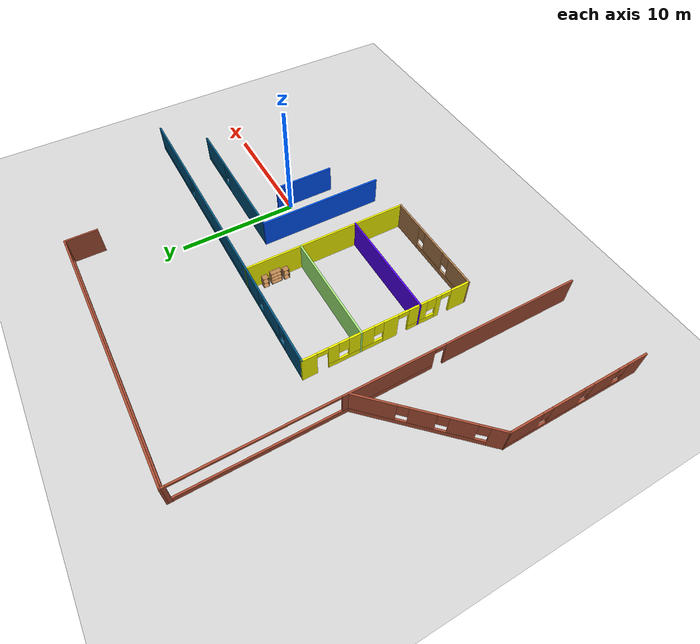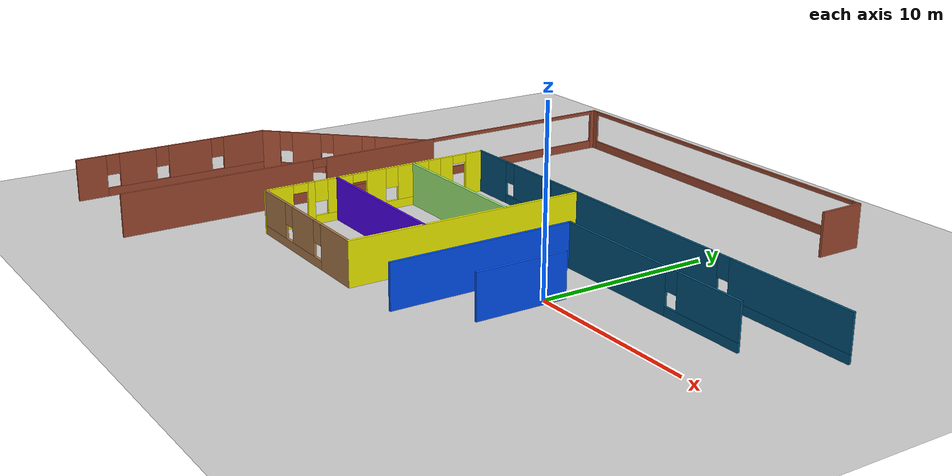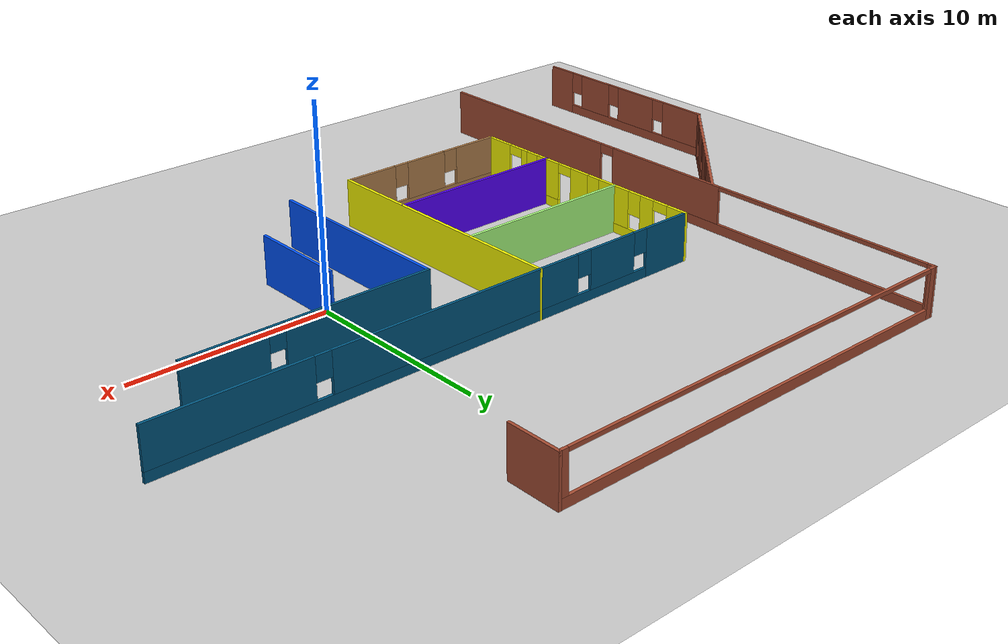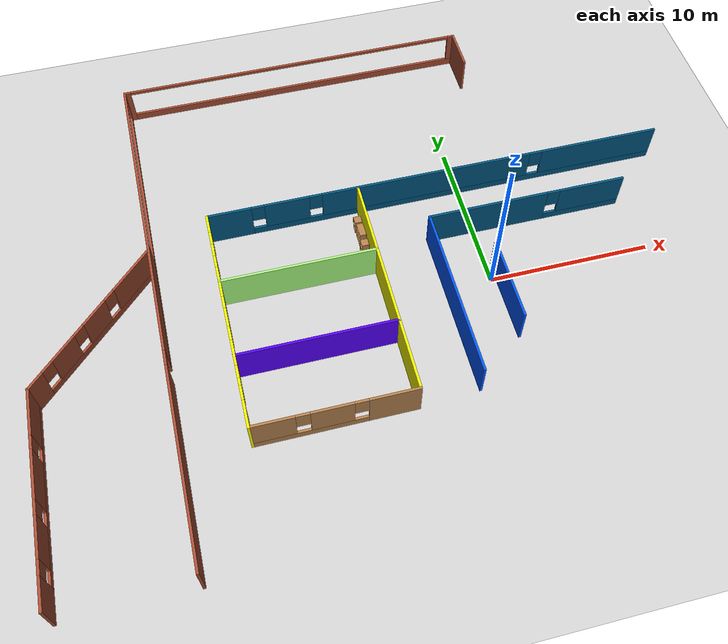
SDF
<sdf version="1.6">
 <world name="default">
  <model name="ground_plane">
   <static>1</static>
   <link name="link">
    <collision name="collision">
     <geometry><plane><normal>0 0 1</normal><size>100 100</size></plane></geometry>
     <surface><friction><ode><mu>100</mu><mu2>50</mu2></ode></friction></surface>
    </collision>
    <visual name="visual">
     <cast_shadows>0</cast_shadows>
     <geometry><plane><normal>0 0 1</normal><size>100 100</size></plane></geometry>
     <material>
      <script><uri>file://media/materials/scripts/gazebo.material</uri><name>Gazebo/Grey</name></script>
     </material>
    </visual>
   </link>
  </model>
  <model name="spiral_office">
   <link name="Wall_10">
    <pose>-8.28463 18.4006 0 0 -0 0</pose>
    <visual name="Wall_10_Visual_0">
     <pose>-11.142 0 1.25 0 -0 0</pose>
     <geometry><box><size>0.465955 0.15 2.5</size></box></geometry>
     <material>
      <script><uri>file://media/materials/scripts/gazebo.material</uri><name>Gazebo/Bricks</name></script>
      <ambient>1 1 1 1</ambient>
     </material>
     <meta><layer>0</layer></meta>
    </visual>
    <collision name="Wall_10_Collision_0">
     <geometry><box><size>0.465955 0.15 2.5</size></box></geometry>
     <pose>-11.142 0 1.25 0 -0 0</pose>
    </collision>
    <visual name="Wall_10_Visual_1">
     <pose>0.232978 0 0.25 0 -0 0</pose>
     <geometry><box><size>22.284 0.15 0.5</size></box></geometry>
     <material>
      <script><uri>file://media/materials/scripts/gazebo.material</uri><name>Gazebo/Bricks</name></script>
      <ambient>1 1 1 1</ambient>
     </material>
     <meta><layer>0</layer></meta>
    </visual>
    <collision name="Wall_10_Collision_1">
     <geometry><box><size>22.284 0.15 0.5</size></box></geometry>
     <pose>0.232978 0 0.25 0 -0 0</pose>
    </collision>
    <visual name="Wall_10_Visual_2">
     <pose>11.1279 0 1.5 0 -0 0</pose>
     <geometry><box><size>0.494199 0.15 2</size></box></geometry>
     <material>
      <script><uri>file://media/materials/scripts/gazebo.material</uri><name>Gazebo/Bricks</name></script>
      <ambient>1 1 1 1</ambient>
     </material>
     <meta><layer>0</layer></meta>
    </visual>
    <collision name="Wall_10_Collision_2">
     <geometry><box><size>0.494199 0.15 2</size></box></geometry>
     <pose>11.1279 0 1.5 0 -0 0</pose>
    </collision>
    <visual name="Wall_10_Visual_3">
     <pose>-0.014122 0 2.4 0 -0 0</pose>
     <geometry><box><size>21.7898 0.15 0.2</size></box></geometry>
     <material>
      <script><uri>file://media/materials/scripts/gazebo.material</uri><name>Gazebo/Bricks</name></script>
      <ambient>1 1 1 1</ambient>
     </material>
     <meta><layer>0</layer></meta>
    </visual>
    <collision name="Wall_10_Collision_3">
     <geometry><box><size>21.7898 0.15 0.2</size></box></geometry>
     <pose>-0.014122 0 2.4 0 -0 0</pose>
    </collision>
   </link>
   <link name="Wall_11">
    <collision name="Wall_11_Collision">
     <geometry><box><size>2.75 0.15 2.5</size></box></geometry>
     <pose>0 0 1.25 0 -0 0</pose>
    </collision>
    <visual name="Wall_11_Visual">
     <pose>0 0 1.25 0 -0 0</pose>
     <geometry><box><size>2.75 0.15 2.5</size></box></geometry>
     <material>
      <script><uri>file://media/materials/scripts/gazebo.material</uri><name>Gazebo/Bricks</name></script>
      <ambient>1 1 1 1</ambient>
     </material>
     <meta><layer>0</layer></meta>
    </visual>
    <pose>3.01537 17.1006 0 0 0 -1.5708</pose>
   </link>
   <link name="Wall_36">
    <collision name="Wall_36_Collision">
     <geometry><box><size>14.25 0.15 2.5</size></box></geometry>
     <pose>0 0 1.25 0 -0 0</pose>
    </collision>
    <visual name="Wall_36_Visual">
     <pose>0 0 1.25 0 -0 0</pose>
     <geometry><box><size>14.25 0.15 2.5</size></box></geometry>
     <material>
      <script><uri>file://media/materials/scripts/gazebo.material</uri><name>Gazebo/Grey</name></script>
      <ambient>1 1 0 1</ambient>
     </material>
     <meta><layer>0</layer></meta>
    </visual>
    <pose>-6.55416 -0.061107 0 0 0 -1.5708</pose>
   </link>
   <link name="Wall_37">
    <pose>-11.2292 -7.11111 0 0 -0 3.14159</pose>
    <visual name="Wall_37_Visual_0">
     <pose>-3.28826 0 1.25 0 -0 0</pose>
     <geometry><box><size>2.92347 0.15 2.5</size></box></geometry>
     <material>
      <script><uri>file://media/materials/scripts/gazebo.material</uri><name>Gazebo/Wood</name></script>
      <ambient>1 1 1 1</ambient>
     </material>
     <meta><layer>0</layer></meta>
    </visual>
    <collision name="Wall_37_Collision_0">
     <geometry><box><size>2.92347 0.15 2.5</size></box></geometry>
     <pose>-3.28826 0 1.25 0 -0 0</pose>
    </collision>
    <visual name="Wall_37_Visual_1">
     <pose>1.46174 0 0.25 0 -0 0</pose>
     <geometry><box><size>6.57653 0.15 0.5</size></box></geometry>
     <material>
      <script><uri>file://media/materials/scripts/gazebo.material</uri><name>Gazebo/Wood</name></script>
      <ambient>1 1 1 1</ambient>
     </material>
     <meta><layer>0</layer></meta>
    </visual>
    <collision name="Wall_37_Collision_1">
     <geometry><box><size>6.57653 0.15 0.5</size></box></geometry>
     <pose>1.46174 0 0.25 0 -0 0</pose>
    </collision>
    <visual name="Wall_37_Visual_2">
     <pose>0.178551 0 1.5 0 -0 0</pose>
     <geometry><box><size>2.41015 0.15 2</size></box></geometry>
     <material>
      <script><uri>file://media/materials/scripts/gazebo.material</uri><name>Gazebo/Wood</name></script>
      <ambient>1 1 1 1</ambient>
     </material>
     <meta><layer>0</layer></meta>
    </visual>
    <collision name="Wall_37_Collision_2">
     <geometry><box><size>2.41015 0.15 2</size></box></geometry>
     <pose>0.178551 0 1.5 0 -0 0</pose>
    </collision>
    <visual name="Wall_37_Visual_3">
     <pose>3.46681 0 1.5 0 -0 0</pose>
     <geometry><box><size>2.56637 0.15 2</size></box></geometry>
     <material>
      <script><uri>file://media/materials/scripts/gazebo.material</uri><name>Gazebo/Wood</name></script>
      <ambient>1 1 1 1</ambient>
     </material>
     <meta><layer>0</layer></meta>
    </visual>
    <collision name="Wall_37_Collision_3">
     <geometry><box><size>2.56637 0.15 2</size></box></geometry>
     <pose>3.46681 0 1.5 0 -0 0</pose>
    </collision>
    <visual name="Wall_37_Visual_4">
     <pose>-1.42653 0 1.9 0 -0 0</pose>
     <geometry><box><size>0.8 0.15 1.2</size></box></geometry>
     <material>
      <script><uri>file://media/materials/scripts/gazebo.material</uri><name>Gazebo/Wood</name></script>
      <ambient>1 1 1 1</ambient>
     </material>
     <meta><layer>0</layer></meta>
    </visual>
    <collision name="Wall_37_Collision_4">
     <geometry><box><size>0.8 0.15 1.2</size></box></geometry>
     <pose>-1.42653 0 1.9 0 -0 0</pose>
    </collision>
    <visual name="Wall_37_Visual_5">
     <pose>1.78363 0 1.9 0 -0 0</pose>
     <geometry><box><size>0.8 0.15 1.2</size></box></geometry>
     <material>
      <script><uri>file://media/materials/scripts/gazebo.material</uri><name>Gazebo/Wood</name></script>
      <ambient>1 1 1 1</ambient>
     </material>
     <meta><layer>0</layer></meta>
    </visual>
    <collision name="Wall_37_Collision_5">
     <geometry><box><size>0.8 0.15 1.2</size></box></geometry>
     <pose>1.78363 0 1.9 0 -0 0</pose>
    </collision>
   </link>
   <link name="Wall_38">
    <pose>-15.9042 -0.061107 0 0 -0 1.5708</pose>
    <visual name="Wall_38_Visual_0">
     <pose>-6.27959 0 1.25 0 -0 0</pose>
     <geometry><box><size>1.69081 0.15 2.5</size></box></geometry>
     <material>
      <script><uri>file://media/materials/scripts/gazebo.material</uri><name>Gazebo/Grey</name></script>
      <ambient>1 1 0 1</ambient>
     </material>
     <meta><layer>0</layer></meta>
    </visual>
    <collision name="Wall_38_Collision_0">
     <geometry><box><size>1.69081 0.15 2.5</size></box></geometry>
     <pose>-6.27959 0 1.25 0 -0 0</pose>
    </collision>
    <visual name="Wall_38_Visual_1">
     <pose>-4.31572 0 1.25 0 -0 0</pose>
     <geometry><box><size>0.436935 0.15 2.5</size></box></geometry>
     <material>
      <script><uri>file://media/materials/scripts/gazebo.material</uri><name>Gazebo/Grey</name></script>
      <ambient>1 1 0 1</ambient>
     </material>
     <meta><layer>0</layer></meta>
    </visual>
    <collision name="Wall_38_Collision_1">
     <geometry><box><size>0.436935 0.15 2.5</size></box></geometry>
     <pose>-4.31572 0 1.25 0 -0 0</pose>
    </collision>
    <visual name="Wall_38_Visual_2">
     <pose>-0.169275 0 1.25 0 -0 0</pose>
     <geometry><box><size>1.23947 0.15 2.5</size></box></geometry>
     <material>
      <script><uri>file://media/materials/scripts/gazebo.material</uri><name>Gazebo/Grey</name></script>
      <ambient>1 1 0 1</ambient>
     </material>
     <meta><layer>0</layer></meta>
    </visual>
    <collision name="Wall_38_Collision_2">
     <geometry><box><size>1.23947 0.15 2.5</size></box></geometry>
     <pose>-0.169275 0 1.25 0 -0 0</pose>
    </collision>
    <visual name="Wall_38_Visual_3">
     <pose>6.5119 0 1.25 0 -0 0</pose>
     <geometry><box><size>1.2262 0.15 2.5</size></box></geometry>
     <material>
      <script><uri>file://media/materials/scripts/gazebo.material</uri><name>Gazebo/Grey</name></script>
      <ambient>1 1 0 1</ambient>
     </material>
     <meta><layer>0</layer></meta>
    </visual>
    <collision name="Wall_38_Collision_3">
     <geometry><box><size>1.2262 0.15 2.5</size></box></geometry>
     <pose>6.5119 0 1.25 0 -0 0</pose>
    </collision>
    <visual name="Wall_38_Visual_4">
     <pose>-2.89313 0 0.25 0 -0 0</pose>
     <geometry><box><size>2.40824 0.15 0.5</size></box></geometry>
     <material>
      <script><uri>file://media/materials/scripts/gazebo.material</uri><name>Gazebo/Grey</name></script>
      <ambient>1 1 0 1</ambient>
     </material>
     <meta><layer>0</layer></meta>
    </visual>
    <collision name="Wall_38_Collision_4">
     <geometry><box><size>2.40824 0.15 0.5</size></box></geometry>
     <pose>-2.89313 0 0.25 0 -0 0</pose>
    </collision>
    <visual name="Wall_38_Visual_5">
     <pose>2.72463 0 0.25 0 -0 0</pose>
     <geometry><box><size>4.54834 0.15 0.5</size></box></geometry>
     <material>
      <script><uri>file://media/materials/scripts/gazebo.material</uri><name>Gazebo/Grey</name></script>
      <ambient>1 1 0 1</ambient>
     </material>
     <meta><layer>0</layer></meta>
    </visual>
    <collision name="Wall_38_Collision_5">
     <geometry><box><size>4.54834 0.15 0.5</size></box></geometry>
     <pose>2.72463 0 0.25 0 -0 0</pose>
    </collision>
    <visual name="Wall_38_Visual_6">
     <pose>-2.49313 0 1.5 0 -0 0</pose>
     <geometry><box><size>1.60824 0.15 2</size></box></geometry>
     <material>
      <script><uri>file://media/materials/scripts/gazebo.material</uri><name>Gazebo/Grey</name></script>
      <ambient>1 1 0 1</ambient>
     </material>
     <meta><layer>0</layer></meta>
    </visual>
    <collision name="Wall_38_Collision_6">
     <geometry><box><size>1.60824 0.15 2</size></box></geometry>
     <pose>-2.49313 0 1.5 0 -0 0</pose>
    </collision>
    <visual name="Wall_38_Visual_7">
     <pose>-2.49313 0 1.5 0 -0 0</pose>
     <geometry><box><size>1.60824 0.15 2</size></box></geometry>
     <material>
      <script><uri>file://media/materials/scripts/gazebo.material</uri><name>Gazebo/Grey</name></script>
      <ambient>1 1 0 1</ambient>
     </material>
     <meta><layer>0</layer></meta>
    </visual>
    <collision name="Wall_38_Collision_7">
     <geometry><box><size>1.60824 0.15 2</size></box></geometry>
     <pose>-2.49313 0 1.5 0 -0 0</pose>
    </collision>
    <visual name="Wall_38_Visual_8">
     <pose>2.29503 0 1.5 0 -0 0</pose>
     <geometry><box><size>2.08914 0.15 2</size></box></geometry>
     <material>
      <script><uri>file://media/materials/scripts/gazebo.material</uri><name>Gazebo/Grey</name></script>
      <ambient>1 1 0 1</ambient>
     </material>
     <meta><layer>0</layer></meta>
    </visual>
    <collision name="Wall_38_Collision_8">
     <geometry><box><size>2.08914 0.15 2</size></box></geometry>
     <pose>2.29503 0 1.5 0 -0 0</pose>
    </collision>
    <visual name="Wall_38_Visual_9">
     <pose>4.5692 0 1.5 0 -0 0</pose>
     <geometry><box><size>0.859205 0.15 2</size></box></geometry>
     <material>
      <script><uri>file://media/materials/scripts/gazebo.material</uri><name>Gazebo/Grey</name></script>
      <ambient>1 1 0 1</ambient>
     </material>
     <meta><layer>0</layer></meta>
    </visual>
    <collision name="Wall_38_Collision_9">
     <geometry><box><size>0.859205 0.15 2</size></box></geometry>
     <pose>4.5692 0 1.5 0 -0 0</pose>
    </collision>
    <visual name="Wall_38_Visual_10">
     <pose>-3.69725 0 1.9 0 -0 0</pose>
     <geometry><box><size>0.8 0.15 1.2</size></box></geometry>
     <material>
      <script><uri>file://media/materials/scripts/gazebo.material</uri><name>Gazebo/Grey</name></script>
      <ambient>1 1 0 1</ambient>
     </material>
     <meta><layer>0</layer></meta>
    </visual>
    <collision name="Wall_38_Collision_10">
     <geometry><box><size>0.8 0.15 1.2</size></box></geometry>
     <pose>-3.69725 0 1.9 0 -0 0</pose>
    </collision>
    <visual name="Wall_38_Visual_11">
     <pose>0.850461 0 1.9 0 -0 0</pose>
     <geometry><box><size>0.8 0.15 1.2</size></box></geometry>
     <material>
      <script><uri>file://media/materials/scripts/gazebo.material</uri><name>Gazebo/Grey</name></script>
      <ambient>1 1 0 1</ambient>
     </material>
     <meta><layer>0</layer></meta>
    </visual>
    <collision name="Wall_38_Collision_11">
     <geometry><box><size>0.8 0.15 1.2</size></box></geometry>
     <pose>0.850461 0 1.9 0 -0 0</pose>
    </collision>
    <visual name="Wall_38_Visual_12">
     <pose>3.7396 0 1.9 0 -0 0</pose>
     <geometry><box><size>0.8 0.15 1.2</size></box></geometry>
     <material>
      <script><uri>file://media/materials/scripts/gazebo.material</uri><name>Gazebo/Grey</name></script>
      <ambient>1 1 0 1</ambient>
     </material>
     <meta><layer>0</layer></meta>
    </visual>
    <collision name="Wall_38_Collision_12">
     <geometry><box><size>0.8 0.15 1.2</size></box></geometry>
     <pose>3.7396 0 1.9 0 -0 0</pose>
    </collision>
    <visual name="Wall_38_Visual_13">
     <pose>-4.98419 0 2.25 0 -0 0</pose>
     <geometry><box><size>0.9 0.15 0.5</size></box></geometry>
     <material>
      <script><uri>file://media/materials/scripts/gazebo.material</uri><name>Gazebo/Grey</name></script>
      <ambient>1 1 0 1</ambient>
     </material>
     <meta><layer>0</layer></meta>
    </visual>
    <collision name="Wall_38_Collision_13">
     <geometry><box><size>0.9 0.15 0.5</size></box></geometry>
     <pose>-4.98419 0 2.25 0 -0 0</pose>
    </collision>
    <visual name="Wall_38_Visual_14">
     <pose>-1.23901 0 2.25 0 -0 0</pose>
     <geometry><box><size>0.9 0.15 0.5</size></box></geometry>
     <material>
      <script><uri>file://media/materials/scripts/gazebo.material</uri><name>Gazebo/Grey</name></script>
      <ambient>1 1 0 1</ambient>
     </material>
     <meta><layer>0</layer></meta>
    </visual>
    <collision name="Wall_38_Collision_14">
     <geometry><box><size>0.9 0.15 0.5</size></box></geometry>
     <pose>-1.23901 0 2.25 0 -0 0</pose>
    </collision>
    <visual name="Wall_38_Visual_15">
     <pose>-1.23901 0 2.25 0 -0 0</pose>
     <geometry><box><size>0.9 0.15 0.5</size></box></geometry>
     <material>
      <script><uri>file://media/materials/scripts/gazebo.material</uri><name>Gazebo/Grey</name></script>
      <ambient>1 1 0 1</ambient>
     </material>
     <meta><layer>0</layer></meta>
    </visual>
    <collision name="Wall_38_Collision_15">
     <geometry><box><size>0.9 0.15 0.5</size></box></geometry>
     <pose>-1.23901 0 2.25 0 -0 0</pose>
    </collision>
    <visual name="Wall_38_Visual_16">
     <pose>5.4488 0 2.25 0 -0 0</pose>
     <geometry><box><size>0.9 0.15 0.5</size></box></geometry>
     <material>
      <script><uri>file://media/materials/scripts/gazebo.material</uri><name>Gazebo/Grey</name></script>
      <ambient>1 1 0 1</ambient>
     </material>
     <meta><layer>0</layer></meta>
    </visual>
    <collision name="Wall_38_Collision_16">
     <geometry><box><size>0.9 0.15 0.5</size></box></geometry>
     <pose>5.4488 0 2.25 0 -0 0</pose>
    </collision>
   </link>
   <link name="Wall_39">
    <pose>-1.47916 6.98889 0 0 -0 0</pose>
    <visual name="Wall_39_Visual_0">
     <pose>-13.1098 0 1.25 0 -0 0</pose>
     <geometry><box><size>2.78039 0.15 2.5</size></box></geometry>
     <material>
      <script><uri>file://media/materials/scripts/gazebo.material</uri><name>Gazebo/Grey</name></script>
      <ambient>0 0.333333 0.498039 1</ambient>
     </material>
     <meta><layer>0</layer></meta>
    </visual>
    <collision name="Wall_39_Collision_0">
     <geometry><box><size>2.78039 0.15 2.5</size></box></geometry>
     <pose>-13.1098 0 1.25 0 -0 0</pose>
    </collision>
    <visual name="Wall_39_Visual_1">
     <pose>1.39019 0 0.25 0 -0 0</pose>
     <geometry><box><size>26.2196 0.15 0.5</size></box></geometry>
     <material>
      <script><uri>file://media/materials/scripts/gazebo.material</uri><name>Gazebo/Grey</name></script>
      <ambient>0 0.333333 0.498039 1</ambient>
     </material>
     <meta><layer>0</layer></meta>
    </visual>
    <collision name="Wall_39_Collision_1">
     <geometry><box><size>26.2196 0.15 0.5</size></box></geometry>
     <pose>1.39019 0 0.25 0 -0 0</pose>
    </collision>
    <visual name="Wall_39_Visual_2">
     <pose>-9.52728 0 1.5 0 -0 0</pose>
     <geometry><box><size>2.78467 0.15 2</size></box></geometry>
     <material>
      <script><uri>file://media/materials/scripts/gazebo.material</uri><name>Gazebo/Grey</name></script>
      <ambient>0 0.333333 0.498039 1</ambient>
     </material>
     <meta><layer>0</layer></meta>
    </visual>
    <collision name="Wall_39_Collision_2">
     <geometry><box><size>2.78467 0.15 2</size></box></geometry>
     <pose>-9.52728 0 1.5 0 -0 0</pose>
    </collision>
    <visual name="Wall_39_Visual_3">
     <pose>-0.641047 0 1.5 0 -0 0</pose>
     <geometry><box><size>13.3878 0.15 2</size></box></geometry>
     <material>
      <script><uri>file://media/materials/scripts/gazebo.material</uri><name>Gazebo/Grey</name></script>
      <ambient>0 0.333333 0.498039 1</ambient>
     </material>
     <meta><layer>0</layer></meta>
    </visual>
    <collision name="Wall_39_Collision_3">
     <geometry><box><size>13.3878 0.15 2</size></box></geometry>
     <pose>-0.641047 0 1.5 0 -0 0</pose>
    </collision>
    <visual name="Wall_39_Visual_4">
     <pose>10.6764 0 1.5 0 -0 0</pose>
     <geometry><box><size>7.64715 0.15 2</size></box></geometry>
     <material>
      <script><uri>file://media/materials/scripts/gazebo.material</uri><name>Gazebo/Grey</name></script>
      <ambient>0 0.333333 0.498039 1</ambient>
     </material>
     <meta><layer>0</layer></meta>
    </visual>
    <collision name="Wall_39_Collision_4">
     <geometry><box><size>7.64715 0.15 2</size></box></geometry>
     <pose>10.6764 0 1.5 0 -0 0</pose>
    </collision>
    <visual name="Wall_39_Visual_5">
     <pose>-11.3196 0 1.9 0 -0 0</pose>
     <geometry><box><size>0.8 0.15 1.2</size></box></geometry>
     <material>
      <script><uri>file://media/materials/scripts/gazebo.material</uri><name>Gazebo/Grey</name></script>
      <ambient>0 0.333333 0.498039 1</ambient>
     </material>
     <meta><layer>0</layer></meta>
    </visual>
    <collision name="Wall_39_Collision_5">
     <geometry><box><size>0.8 0.15 1.2</size></box></geometry>
     <pose>-11.3196 0 1.9 0 -0 0</pose>
    </collision>
    <visual name="Wall_39_Visual_6">
     <pose>-7.73495 0 1.9 0 -0 0</pose>
     <geometry><box><size>0.8 0.15 1.2</size></box></geometry>
     <material>
      <script><uri>file://media/materials/scripts/gazebo.material</uri><name>Gazebo/Grey</name></script>
      <ambient>0 0.333333 0.498039 1</ambient>
     </material>
     <meta><layer>0</layer></meta>
    </visual>
    <collision name="Wall_39_Collision_6">
     <geometry><box><size>0.8 0.15 1.2</size></box></geometry>
     <pose>-7.73495 0 1.9 0 -0 0</pose>
    </collision>
    <visual name="Wall_39_Visual_7">
     <pose>6.45285 0 1.9 0 -0 0</pose>
     <geometry><box><size>0.8 0.15 1.2</size></box></geometry>
     <material>
      <script><uri>file://media/materials/scripts/gazebo.material</uri><name>Gazebo/Grey</name></script>
      <ambient>0 0.333333 0.498039 1</ambient>
     </material>
     <meta><layer>0</layer></meta>
    </visual>
    <collision name="Wall_39_Collision_7">
     <geometry><box><size>0.8 0.15 1.2</size></box></geometry>
     <pose>6.45285 0 1.9 0 -0 0</pose>
    </collision>
   </link>
   <link name="Wall_42">
    <collision name="Wall_42_Collision">
     <geometry><box><size>10.75 0.15 2.5</size></box></geometry>
     <pose>0 0 1.25 0 -0 0</pose>
    </collision>
    <visual name="Wall_42_Visual">
     <pose>0 0 1.25 0 -0 0</pose>
     <geometry><box><size>10.75 0.15 2.5</size></box></geometry>
     <material>
      <script><uri>file://media/materials/scripts/gazebo.material</uri><name>Gazebo/Grey</name></script>
      <ambient>0 0.333333 1 1</ambient>
     </material>
     <meta><layer>0</layer></meta>
    </visual>
    <pose>-2.90416 -1.56111 0 0 -0 1.5708</pose>
   </link>
   <link name="Wall_43">
    <pose>3.27084 3.73889 0 0 -0 0</pose>
    <visual name="Wall_43_Visual_0">
     <pose>-2.47357 0 1.25 0 -0 0</pose>
     <geometry><box><size>7.55285 0.15 2.5</size></box></geometry>
     <material>
      <script><uri>file://media/materials/scripts/gazebo.material</uri><name>Gazebo/Grey</name></script>
      <ambient>0 0.333333 0.498039 1</ambient>
     </material>
     <meta><layer>0</layer></meta>
    </visual>
    <collision name="Wall_43_Collision_0">
     <geometry><box><size>7.55285 0.15 2.5</size></box></geometry>
     <pose>-2.47357 0 1.25 0 -0 0</pose>
    </collision>
    <visual name="Wall_43_Visual_1">
     <pose>3.77643 0 0.25 0 -0 0</pose>
     <geometry><box><size>4.94715 0.15 0.5</size></box></geometry>
     <material>
      <script><uri>file://media/materials/scripts/gazebo.material</uri><name>Gazebo/Grey</name></script>
      <ambient>0 0.333333 0.498039 1</ambient>
     </material>
     <meta><layer>0</layer></meta>
    </visual>
    <collision name="Wall_43_Collision_1">
     <geometry><box><size>4.94715 0.15 0.5</size></box></geometry>
     <pose>3.77643 0 0.25 0 -0 0</pose>
    </collision>
    <visual name="Wall_43_Visual_2">
     <pose>4.17643 0 1.5 0 -0 0</pose>
     <geometry><box><size>4.14715 0.15 2</size></box></geometry>
     <material>
      <script><uri>file://media/materials/scripts/gazebo.material</uri><name>Gazebo/Grey</name></script>
      <ambient>0 0.333333 0.498039 1</ambient>
     </material>
     <meta><layer>0</layer></meta>
    </visual>
    <collision name="Wall_43_Collision_2">
     <geometry><box><size>4.14715 0.15 2</size></box></geometry>
     <pose>4.17643 0 1.5 0 -0 0</pose>
    </collision>
    <visual name="Wall_43_Visual_3">
     <pose>1.70285 0 1.9 0 -0 0</pose>
     <geometry><box><size>0.8 0.15 1.2</size></box></geometry>
     <material>
      <script><uri>file://media/materials/scripts/gazebo.material</uri><name>Gazebo/Grey</name></script>
      <ambient>0 0.333333 0.498039 1</ambient>
     </material>
     <meta><layer>0</layer></meta>
    </visual>
    <collision name="Wall_43_Collision_3">
     <geometry><box><size>0.8 0.15 1.2</size></box></geometry>
     <pose>1.70285 0 1.9 0 -0 0</pose>
    </collision>
   </link>
   <link name="Wall_46">
    <collision name="Wall_46_Collision">
     <geometry><box><size>5.25 0.15 2.5</size></box></geometry>
     <pose>0 0 1.25 0 -0 0</pose>
    </collision>
    <visual name="Wall_46_Visual">
     <pose>0 0 1.25 0 -0 0</pose>
     <geometry><box><size>5.25 0.15 2.5</size></box></geometry>
     <material>
      <script><uri>file://media/materials/scripts/gazebo.material</uri><name>Gazebo/Grey</name></script>
      <ambient>0 0.333333 1 1</ambient>
     </material>
     <meta><layer>0</layer></meta>
    </visual>
    <pose>0.345839 -1.56111 0 0 -0 1.5708</pose>
   </link>
   <link name="Wall_5">
    <pose>-19.5846 2.22564 0 0 0 -1.5708</pose>
    <visual name="Wall_5_Visual_0">
     <pose>-16.0373 0 1.25 0 -0 0</pose>
     <geometry><box><size>0.425449 0.15 2.5</size></box></geometry>
     <material>
      <script><uri>file://media/materials/scripts/gazebo.material</uri><name>Gazebo/Bricks</name></script>
      <ambient>1 1 1 1</ambient>
     </material>
     <meta><layer>0</layer></meta>
    </visual>
    <collision name="Wall_5_Collision_0">
     <geometry><box><size>0.425449 0.15 2.5</size></box></geometry>
     <pose>-16.0373 0 1.25 0 -0 0</pose>
    </collision>
    <visual name="Wall_5_Visual_1">
     <pose>10.4339 0 1.25 0 -0 0</pose>
     <geometry><box><size>11.6322 0.15 2.5</size></box></geometry>
     <material>
      <script><uri>file://media/materials/scripts/gazebo.material</uri><name>Gazebo/Bricks</name></script>
      <ambient>1 1 1 1</ambient>
     </material>
     <meta><layer>0</layer></meta>
    </visual>
    <collision name="Wall_5_Collision_1">
     <geometry><box><size>11.6322 0.15 2.5</size></box></geometry>
     <pose>10.4339 0 1.25 0 -0 0</pose>
    </collision>
    <visual name="Wall_5_Visual_2">
     <pose>-6.05338 0 0.25 0 -0 0</pose>
     <geometry><box><size>19.5423 0.15 0.5</size></box></geometry>
     <material>
      <script><uri>file://media/materials/scripts/gazebo.material</uri><name>Gazebo/Bricks</name></script>
      <ambient>1 1 1 1</ambient>
     </material>
     <meta><layer>0</layer></meta>
    </visual>
    <collision name="Wall_5_Collision_2">
     <geometry><box><size>19.5423 0.15 0.5</size></box></geometry>
     <pose>-6.05338 0 0.25 0 -0 0</pose>
    </collision>
    <visual name="Wall_5_Visual_3">
     <pose>0.021618 0 1.5 0 -0 0</pose>
     <geometry><box><size>7.39234 0.15 2</size></box></geometry>
     <material>
      <script><uri>file://media/materials/scripts/gazebo.material</uri><name>Gazebo/Bricks</name></script>
      <ambient>1 1 1 1</ambient>
     </material>
     <meta><layer>0</layer></meta>
    </visual>
    <collision name="Wall_5_Collision_3">
     <geometry><box><size>7.39234 0.15 2</size></box></geometry>
     <pose>0.021618 0 1.5 0 -0 0</pose>
    </collision>
    <visual name="Wall_5_Visual_4">
     <pose>4.16779 0 2.25 0 -0 0</pose>
     <geometry><box><size>0.9 0.15 0.5</size></box></geometry>
     <material>
      <script><uri>file://media/materials/scripts/gazebo.material</uri><name>Gazebo/Bricks</name></script>
      <ambient>1 1 1 1</ambient>
     </material>
     <meta><layer>0</layer></meta>
    </visual>
    <collision name="Wall_5_Collision_4">
     <geometry><box><size>0.9 0.15 0.5</size></box></geometry>
     <pose>4.16779 0 2.25 0 -0 0</pose>
    </collision>
    <visual name="Wall_5_Visual_5">
     <pose>-9.74955 0 2.4 0 -0 0</pose>
     <geometry><box><size>12.15 0.15 0.2</size></box></geometry>
     <material>
      <script><uri>file://media/materials/scripts/gazebo.material</uri><name>Gazebo/Bricks</name></script>
      <ambient>1 1 1 1</ambient>
     </material>
     <meta><layer>0</layer></meta>
    </visual>
    <collision name="Wall_5_Collision_5">
     <geometry><box><size>12.15 0.15 0.2</size></box></geometry>
     <pose>-9.74955 0 2.4 0 -0 0</pose>
    </collision>
   </link>
   <link name="Wall_51">
    <collision name="Wall_51_Collision">
     <geometry><box><size>9.5 0.15 2.5</size></box></geometry>
     <pose>0 0 1.25 0 -0 0</pose>
    </collision>
    <visual name="Wall_51_Visual">
     <pose>0 0 1.25 0 -0 0</pose>
     <geometry><box><size>9.5 0.15 2.5</size></box></geometry>
     <material>
      <script><uri>file://media/materials/scripts/gazebo.material</uri><name>Gazebo/Grey</name></script>
      <ambient>0.333333 0 1 1</ambient>
     </material>
     <meta><layer>0</layer></meta>
    </visual>
    <pose>-11.2314 -2.73251 0 0 -0 0</pose>
   </link>
   <link name="Wall_53">
    <collision name="Wall_53_Collision">
     <geometry><box><size>9.5 0.15 2.5</size></box></geometry>
     <pose>0 0 1.25 0 -0 0</pose>
    </collision>
    <visual name="Wall_53_Visual">
     <pose>0 0 1.25 0 -0 0</pose>
     <geometry><box><size>9.5 0.15 2.5</size></box></geometry>
     <material>
      <script><uri>file://media/materials/scripts/gazebo.material</uri><name>Gazebo/Grey</name></script>
      <ambient>0.666667 1 0.498039 1</ambient>
     </material>
     <meta><layer>0</layer></meta>
    </visual>
    <pose>-11.2314 2.25125 0 0 -0 0</pose>
   </link>
   <link name="Wall_7">
    <pose>-26.9345 -8.02437 0 0 -0 1.57077</pose>
    <visual name="Wall_7_Visual_0">
     <pose>-5.10444 0 1.25 0 -0 0</pose>
     <geometry><box><size>1.79113 0.15 2.5</size></box></geometry>
     <material>
      <script><uri>file://media/materials/scripts/gazebo.material</uri><name>Gazebo/Bricks</name></script>
      <ambient>1 1 1 1</ambient>
     </material>
     <meta><layer>0</layer></meta>
    </visual>
    <collision name="Wall_7_Collision_0">
     <geometry><box><size>1.79113 0.15 2.5</size></box></geometry>
     <pose>-5.10444 0 1.25 0 -0 0</pose>
    </collision>
    <visual name="Wall_7_Visual_1">
     <pose>0.895564 0 0.25 0 -0 0</pose>
     <geometry><box><size>10.2089 0.15 0.5</size></box></geometry>
     <material>
      <script><uri>file://media/materials/scripts/gazebo.material</uri><name>Gazebo/Bricks</name></script>
      <ambient>1 1 1 1</ambient>
     </material>
     <meta><layer>0</layer></meta>
    </visual>
    <collision name="Wall_7_Collision_1">
     <geometry><box><size>10.2089 0.15 0.5</size></box></geometry>
     <pose>0.895564 0 0.25 0 -0 0</pose>
    </collision>
    <visual name="Wall_7_Visual_2">
     <pose>-2.27068 0 1.5 0 -0 0</pose>
     <geometry><box><size>2.27639 0.15 2</size></box></geometry>
     <material>
      <script><uri>file://media/materials/scripts/gazebo.material</uri><name>Gazebo/Bricks</name></script>
      <ambient>1 1 1 1</ambient>
     </material>
     <meta><layer>0</layer></meta>
    </visual>
    <collision name="Wall_7_Collision_2">
     <geometry><box><size>2.27639 0.15 2</size></box></geometry>
     <pose>-2.27068 0 1.5 0 -0 0</pose>
    </collision>
    <visual name="Wall_7_Visual_3">
     <pose>1.05183 0 1.5 0 -0 0</pose>
     <geometry><box><size>2.76862 0.15 2</size></box></geometry>
     <material>
      <script><uri>file://media/materials/scripts/gazebo.material</uri><name>Gazebo/Bricks</name></script>
      <ambient>1 1 1 1</ambient>
     </material>
     <meta><layer>0</layer></meta>
    </visual>
    <collision name="Wall_7_Collision_3">
     <geometry><box><size>2.76862 0.15 2</size></box></geometry>
     <pose>1.05183 0 1.5 0 -0 0</pose>
    </collision>
    <visual name="Wall_7_Visual_4">
     <pose>4.61807 0 1.5 0 -0 0</pose>
     <geometry><box><size>2.76386 0.15 2</size></box></geometry>
     <material>
      <script><uri>file://media/materials/scripts/gazebo.material</uri><name>Gazebo/Bricks</name></script>
      <ambient>1 1 1 1</ambient>
     </material>
     <meta><layer>0</layer></meta>
    </visual>
    <collision name="Wall_7_Collision_4">
     <geometry><box><size>2.76386 0.15 2</size></box></geometry>
     <pose>4.61807 0 1.5 0 -0 0</pose>
    </collision>
    <visual name="Wall_7_Visual_5">
     <pose>-3.80887 0 1.9 0 -0 0</pose>
     <geometry><box><size>0.8 0.15 1.2</size></box></geometry>
     <material>
      <script><uri>file://media/materials/scripts/gazebo.material</uri><name>Gazebo/Bricks</name></script>
      <ambient>1 1 1 1</ambient>
     </material>
     <meta><layer>0</layer></meta>
    </visual>
    <collision name="Wall_7_Collision_5">
     <geometry><box><size>0.8 0.15 1.2</size></box></geometry>
     <pose>-3.80887 0 1.9 0 -0 0</pose>
    </collision>
    <visual name="Wall_7_Visual_6">
     <pose>-0.732479 0 1.9 0 -0 0</pose>
     <geometry><box><size>0.8 0.15 1.2</size></box></geometry>
     <material>
      <script><uri>file://media/materials/scripts/gazebo.material</uri><name>Gazebo/Bricks</name></script>
      <ambient>1 1 1 1</ambient>
     </material>
     <meta><layer>0</layer></meta>
    </visual>
    <collision name="Wall_7_Collision_6">
     <geometry><box><size>0.8 0.15 1.2</size></box></geometry>
     <pose>-0.732479 0 1.9 0 -0 0</pose>
    </collision>
    <visual name="Wall_7_Visual_7">
     <pose>2.83614 0 1.9 0 -0 0</pose>
     <geometry><box><size>0.8 0.15 1.2</size></box></geometry>
     <material>
      <script><uri>file://media/materials/scripts/gazebo.material</uri><name>Gazebo/Bricks</name></script>
      <ambient>1 1 1 1</ambient>
     </material>
     <meta><layer>0</layer></meta>
    </visual>
    <collision name="Wall_7_Collision_7">
     <geometry><box><size>0.8 0.15 1.2</size></box></geometry>
     <pose>2.83614 0 1.9 0 -0 0</pose>
    </collision>
   </link>
   <link name="Wall_8">
    <pose>-23.2803 1.64813 0 0 -0 0.79803</pose>
    <visual name="Wall_8_Visual_0">
     <pose>-4.69349 0 1.25 0 -0 0</pose>
     <geometry><box><size>1.23115 0.15 2.5</size></box></geometry>
     <material>
      <script><uri>file://media/materials/scripts/gazebo.material</uri><name>Gazebo/Bricks</name></script>
      <ambient>1 1 1 1</ambient>
     </material>
     <meta><layer>0</layer></meta>
    </visual>
    <collision name="Wall_8_Collision_0">
     <geometry><box><size>1.23115 0.15 2.5</size></box></geometry>
     <pose>-4.69349 0 1.25 0 -0 0</pose>
    </collision>
    <visual name="Wall_8_Visual_1">
     <pose>0.615576 0 0.25 0 -0 0</pose>
     <geometry><box><size>9.38698 0.15 0.5</size></box></geometry>
     <material>
      <script><uri>file://media/materials/scripts/gazebo.material</uri><name>Gazebo/Bricks</name></script>
      <ambient>1 1 1 1</ambient>
     </material>
     <meta><layer>0</layer></meta>
    </visual>
    <collision name="Wall_8_Collision_1">
     <geometry><box><size>9.38698 0.15 0.5</size></box></geometry>
     <pose>0.615576 0 0.25 0 -0 0</pose>
    </collision>
    <visual name="Wall_8_Visual_2">
     <pose>-2.35189 0 1.5 0 -0 0</pose>
     <geometry><box><size>1.85205 0.15 2</size></box></geometry>
     <material>
      <script><uri>file://media/materials/scripts/gazebo.material</uri><name>Gazebo/Bricks</name></script>
      <ambient>1 1 1 1</ambient>
     </material>
     <meta><layer>0</layer></meta>
    </visual>
    <collision name="Wall_8_Collision_2">
     <geometry><box><size>1.85205 0.15 2</size></box></geometry>
     <pose>-2.35189 0 1.5 0 -0 0</pose>
    </collision>
    <visual name="Wall_8_Visual_3">
     <pose>0.302361 0 1.5 0 -0 0</pose>
     <geometry><box><size>1.85645 0.15 2</size></box></geometry>
     <material>
      <script><uri>file://media/materials/scripts/gazebo.material</uri><name>Gazebo/Bricks</name></script>
      <ambient>1 1 1 1</ambient>
     </material>
     <meta><layer>0</layer></meta>
    </visual>
    <collision name="Wall_8_Collision_3">
     <geometry><box><size>1.85645 0.15 2</size></box></geometry>
     <pose>0.302361 0 1.5 0 -0 0</pose>
    </collision>
    <visual name="Wall_8_Visual_4">
     <pose>3.66983 0 1.5 0 -0 0</pose>
     <geometry><box><size>3.27848 0.15 2</size></box></geometry>
     <material>
      <script><uri>file://media/materials/scripts/gazebo.material</uri><name>Gazebo/Bricks</name></script>
      <ambient>1 1 1 1</ambient>
     </material>
     <meta><layer>0</layer></meta>
    </visual>
    <collision name="Wall_8_Collision_4">
     <geometry><box><size>3.27848 0.15 2</size></box></geometry>
     <pose>3.66983 0 1.5 0 -0 0</pose>
    </collision>
    <visual name="Wall_8_Visual_5">
     <pose>-3.67792 0 1.9 0 -0 0</pose>
     <geometry><box><size>0.8 0.15 1.2</size></box></geometry>
     <material>
      <script><uri>file://media/materials/scripts/gazebo.material</uri><name>Gazebo/Bricks</name></script>
      <ambient>1 1 1 1</ambient>
     </material>
     <meta><layer>0</layer></meta>
    </visual>
    <collision name="Wall_8_Collision_5">
     <geometry><box><size>0.8 0.15 1.2</size></box></geometry>
     <pose>-3.67792 0 1.9 0 -0 0</pose>
    </collision>
    <visual name="Wall_8_Visual_6">
     <pose>-1.02587 0 1.9 0 -0 0</pose>
     <geometry><box><size>0.8 0.15 1.2</size></box></geometry>
     <material>
      <script><uri>file://media/materials/scripts/gazebo.material</uri><name>Gazebo/Bricks</name></script>
      <ambient>1 1 1 1</ambient>
     </material>
     <meta><layer>0</layer></meta>
    </visual>
    <collision name="Wall_8_Collision_6">
     <geometry><box><size>0.8 0.15 1.2</size></box></geometry>
     <pose>-1.02587 0 1.9 0 -0 0</pose>
    </collision>
    <visual name="Wall_8_Visual_7">
     <pose>1.63059 0 1.9 0 -0 0</pose>
     <geometry><box><size>0.8 0.15 1.2</size></box></geometry>
     <material>
      <script><uri>file://media/materials/scripts/gazebo.material</uri><name>Gazebo/Bricks</name></script>
      <ambient>1 1 1 1</ambient>
     </material>
     <meta><layer>0</layer></meta>
    </visual>
    <collision name="Wall_8_Collision_7">
     <geometry><box><size>0.8 0.15 1.2</size></box></geometry>
     <pose>1.63059 0 1.9 0 -0 0</pose>
    </collision>
   </link>
   <static>1</static>
  </model>
  <model name="cabinet">
   <static>1</static>
   <link name="cabinet_bottom_plate">
    <inertial>
     <pose>0 0 -1 0 -0 0</pose>
     <inertia><ixx>2.05</ixx><ixy>0</ixy><ixz>0</ixz><iyy>2.05</iyy><iyz>0</iyz><izz>2.05</izz></inertia>
     <mass>25</mass>
    </inertial>
    <collision name="cabinet_bottom_plate_geom">
     <pose>0 0 0.01 0 -0 0</pose>
     <geometry><box><size>0.45 0.45 0.02</size></box></geometry>
    </collision>
    <visual name="cabinet_bottom_plate_geom_visual">
     <pose>0 0 0.01 0 -0 0</pose>
     <geometry><box><size>0.45 0.45 0.02</size></box></geometry>
     <material>
      <script><uri>file://media/materials/scripts/gazebo.material</uri><name>Gazebo/Wood</name></script>
     </material>
    </visual>
    <collision name="cabinet_bottom_plate_geom_cabinet_back_plate">
     <pose>0.235 0 0.51 0 -0 0</pose>
     <geometry><box><size>0.02 0.45 1.02</size></box></geometry>
    </collision>
    <visual name="cabinet_bottom_plate_geom_cabinet_back_plate_visual">
     <pose>0.235 0 0.51 0 -0 0</pose>
     <geometry><box><size>0.02 0.45 1.02</size></box></geometry>
     <material>
      <script><uri>file://media/materials/scripts/gazebo.material</uri><name>Gazebo/Wood</name></script>
     </material>
    </visual>
    <collision name="cabinet_bottom_plate_geom_cabinet_left_plate">
     <pose>0 0.235 0.51 0 -0 0</pose>
     <geometry><box><size>0.45 0.02 1.02</size></box></geometry>
    </collision>
    <visual name="cabinet_bottom_plate_geom_cabinet_left_plate_visual">
     <pose>0 0.235 0.51 0 -0 0</pose>
     <geometry><box><size>0.45 0.02 1.02</size></box></geometry>
     <material>
      <script><uri>file://media/materials/scripts/gazebo.material</uri><name>Gazebo/Wood</name></script>
     </material>
    </visual>
    <collision name="cabinet_bottom_plate_geom_cabinet_middle_plate">
     <pose>0 0 0.51 0 -0 0</pose>
     <geometry><box><size>0.45 0.45 0.02</size></box></geometry>
    </collision>
    <visual name="cabinet_bottom_plate_geom_cabinet_middle_plate_visual">
     <pose>0 0 0.51 0 -0 0</pose>
     <geometry><box><size>0.45 0.45 0.02</size></box></geometry>
     <material>
      <script><uri>file://media/materials/scripts/gazebo.material</uri><name>Gazebo/Wood</name></script>
     </material>
    </visual>
    <collision name="cabinet_bottom_plate_geom_cabinet_right_plate">
     <pose>0 -0.235 0.51 0 -0 0</pose>
     <geometry><box><size>0.45 0.02 1.02</size></box></geometry>
    </collision>
    <visual name="cabinet_bottom_plate_geom_cabinet_right_plate_visual">
     <pose>0 -0.235 0.51 0 -0 0</pose>
     <geometry><box><size>0.45 0.02 1.02</size></box></geometry>
     <material>
      <script><uri>file://media/materials/scripts/gazebo.material</uri><name>Gazebo/Wood</name></script>
     </material>
    </visual>
    <collision name="cabinet_bottom_plate_geom_cabinet_top_plate">
     <pose>0 0 1.01 0 -0 0</pose>
     <geometry><box><size>0.45 0.45 0.02</size></box></geometry>
    </collision>
    <visual name="cabinet_bottom_plate_geom_cabinet_top_plate_visual">
     <pose>0 0 1.01 0 -0 0</pose>
     <geometry><box><size>0.45 0.45 0.02</size></box></geometry>
     <material>
      <script><uri>file://media/materials/scripts/gazebo.material</uri><name>Gazebo/Wood</name></script>
     </material>
    </visual>
   </link>
   <pose>-6.91046 3.88785 0 0 -0 0</pose>
  </model>
  <model name="cabinet_clone">
   <static>1</static>
   <link name="cabinet_bottom_plate">
    <inertial>
     <pose>0 0 -1 0 -0 0</pose>
     <inertia><ixx>2.05</ixx><ixy>0</ixy><ixz>0</ixz><iyy>2.05</iyy><iyz>0</iyz><izz>2.05</izz></inertia>
     <mass>25</mass>
    </inertial>
    <collision name="cabinet_bottom_plate_geom">
     <pose>0 0 0.01 0 -0 0</pose>
     <geometry><box><size>0.45 0.45 0.02</size></box></geometry>
    </collision>
    <visual name="cabinet_bottom_plate_geom_visual">
     <pose>0 0 0.01 0 -0 0</pose>
     <geometry><box><size>0.45 0.45 0.02</size></box></geometry>
     <material>
      <script><uri>file://media/materials/scripts/gazebo.material</uri><name>Gazebo/Wood</name></script>
     </material>
    </visual>
    <collision name="cabinet_bottom_plate_geom_cabinet_back_plate">
     <pose>0.235 0 0.51 0 -0 0</pose>
     <geometry><box><size>0.02 0.45 1.02</size></box></geometry>
    </collision>
    <visual name="cabinet_bottom_plate_geom_cabinet_back_plate_visual">
     <pose>0.235 0 0.51 0 -0 0</pose>
     <geometry><box><size>0.02 0.45 1.02</size></box></geometry>
     <material>
      <script><uri>file://media/materials/scripts/gazebo.material</uri><name>Gazebo/Wood</name></script>
     </material>
    </visual>
    <collision name="cabinet_bottom_plate_geom_cabinet_left_plate">
     <pose>0 0.235 0.51 0 -0 0</pose>
     <geometry><box><size>0.45 0.02 1.02</size></box></geometry>
    </collision>
    <visual name="cabinet_bottom_plate_geom_cabinet_left_plate_visual">
     <pose>0 0.235 0.51 0 -0 0</pose>
     <geometry><box><size>0.45 0.02 1.02</size></box></geometry>
     <material>
      <script><uri>file://media/materials/scripts/gazebo.material</uri><name>Gazebo/Wood</name></script>
     </material>
    </visual>
    <collision name="cabinet_bottom_plate_geom_cabinet_middle_plate">
     <pose>0 0 0.51 0 -0 0</pose>
     <geometry><box><size>0.45 0.45 0.02</size></box></geometry>
    </collision>
    <visual name="cabinet_bottom_plate_geom_cabinet_middle_plate_visual">
     <pose>0 0 0.51 0 -0 0</pose>
     <geometry><box><size>0.45 0.45 0.02</size></box></geometry>
     <material>
      <script><uri>file://media/materials/scripts/gazebo.material</uri><name>Gazebo/Wood</name></script>
     </material>
    </visual>
    <collision name="cabinet_bottom_plate_geom_cabinet_right_plate">
     <pose>0 -0.235 0.51 0 -0 0</pose>
     <geometry><box><size>0.45 0.02 1.02</size></box></geometry>
    </collision>
    <visual name="cabinet_bottom_plate_geom_cabinet_right_plate_visual">
     <pose>0 -0.235 0.51 0 -0 0</pose>
     <geometry><box><size>0.45 0.02 1.02</size></box></geometry>
     <material>
      <script><uri>file://media/materials/scripts/gazebo.material</uri><name>Gazebo/Wood</name></script>
     </material>
    </visual>
    <collision name="cabinet_bottom_plate_geom_cabinet_top_plate">
     <pose>0 0 1.01 0 -0 0</pose>
     <geometry><box><size>0.45 0.45 0.02</size></box></geometry>
    </collision>
    <visual name="cabinet_bottom_plate_geom_cabinet_top_plate_visual">
     <pose>0 0 1.01 0 -0 0</pose>
     <geometry><box><size>0.45 0.45 0.02</size></box></geometry>
     <material>
      <script><uri>file://media/materials/scripts/gazebo.material</uri><name>Gazebo/Wood</name></script>
     </material>
    </visual>
   </link>
   <pose>-6.90558 5.66656 0 0 -0 0</pose>
  </model>
  <model name="bookshelf">
   <static>1</static>
   <link name="link">
    <inertial><mass>1</mass></inertial>
    <collision name="back">
     <pose>0 0.005 0.6 0 -0 0</pose>
     <geometry><box><size>0.9 0.01 1.2</size></box></geometry>
    </collision>
    <visual name="visual1">
     <pose>0 0.005 0.6 0 -0 0</pose>
     <geometry><box><size>0.9 0.01 1.2</size></box></geometry>
     <material>
      <script><uri>file://media/materials/scripts/gazebo.material</uri><name>Gazebo/Wood</name></script>
     </material>
    </visual>
    <collision name="left_side">
     <pose>0.45 -0.195 0.6 0 -0 0</pose>
     <geometry><box><size>0.02 0.4 1.2</size></box></geometry>
    </collision>
    <visual name="visual2">
     <pose>0.45 -0.195 0.6 0 -0 0</pose>
     <geometry><box><size>0.02 0.4 1.2</size></box></geometry>
     <material>
      <script><uri>file://media/materials/scripts/gazebo.material</uri><name>Gazebo/Wood</name></script>
     </material>
    </visual>
    <collision name="right_side">
     <pose>-0.45 -0.195 0.6 0 -0 0</pose>
     <geometry><box><size>0.02 0.4 1.2</size></box></geometry>
    </collision>
    <visual name="visual3">
     <pose>-0.45 -0.195 0.6 0 -0 0</pose>
     <geometry><box><size>0.02 0.4 1.2</size></box></geometry>
     <material>
      <script><uri>file://media/materials/scripts/gazebo.material</uri><name>Gazebo/Wood</name></script>
     </material>
    </visual>
    <collision name="bottom">
     <pose>0 -0.195 0.03 0 -0 0</pose>
     <geometry><box><size>0.88 0.4 0.06</size></box></geometry>
    </collision>
    <visual name="visual4">
     <pose>0 -0.195 0.03 0 -0 0</pose>
     <geometry><box><size>0.88 0.4 0.06</size></box></geometry>
     <material>
      <script><uri>file://media/materials/scripts/gazebo.material</uri><name>Gazebo/Wood</name></script>
     </material>
    </visual>
    <collision name="top">
     <pose>0 -0.195 1.19 0 -0 0</pose>
     <geometry><box><size>0.88 0.4 0.02</size></box></geometry>
    </collision>
    <visual name="visual5">
     <pose>0 -0.195 1.19 0 -0 0</pose>
     <geometry><box><size>0.88 0.4 0.02</size></box></geometry>
     <material>
      <script><uri>file://media/materials/scripts/gazebo.material</uri><name>Gazebo/Wood</name></script>
     </material>
    </visual>
    <collision name="low_shelf">
     <pose>0 -0.195 0.43 0 -0 0</pose>
     <geometry><box><size>0.88 0.4 0.02</size></box></geometry>
    </collision>
    <visual name="visual6">
     <pose>0 -0.195 0.43 0 -0 0</pose>
     <geometry><box><size>0.88 0.4 0.02</size></box></geometry>
     <material>
      <script><uri>file://media/materials/scripts/gazebo.material</uri><name>Gazebo/Wood</name></script>
     </material>
    </visual>
    <collision name="high_shelf">
     <pose>0 -0.195 0.8 0 -0 0</pose>
     <geometry><box><size>0.88 0.4 0.02</size></box></geometry>
    </collision>
    <visual name="visual7">
     <pose>0 -0.195 0.8 0 -0 0</pose>
     <geometry><box><size>0.88 0.4 0.02</size></box></geometry>
     <material>
      <script><uri>file://media/materials/scripts/gazebo.material</uri><name>Gazebo/Wood</name></script>
     </material>
    </visual>
   </link>
   <pose>-6.70345 4.75394 0 0 0 -1.56</pose>
  </model>
 </world>
</sdf>
